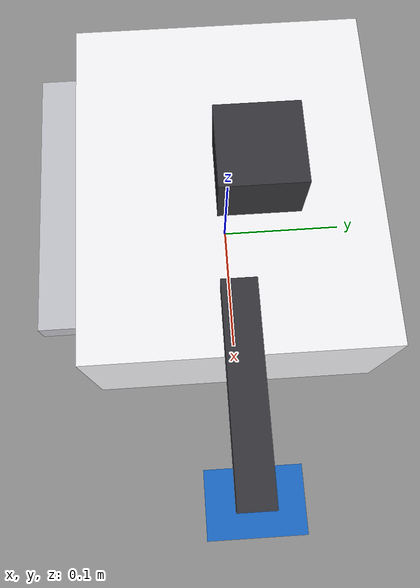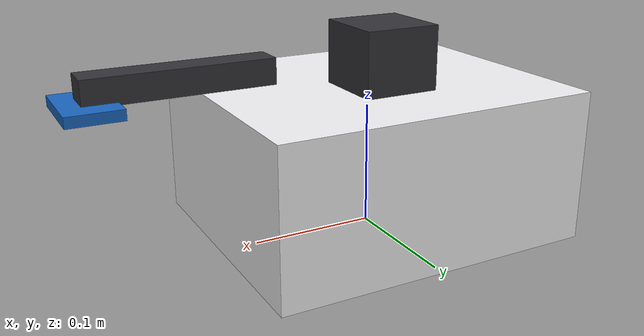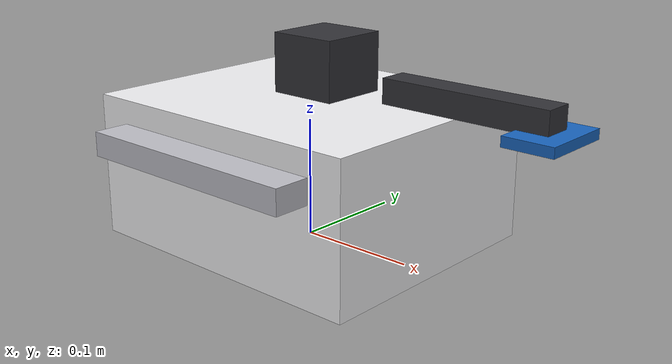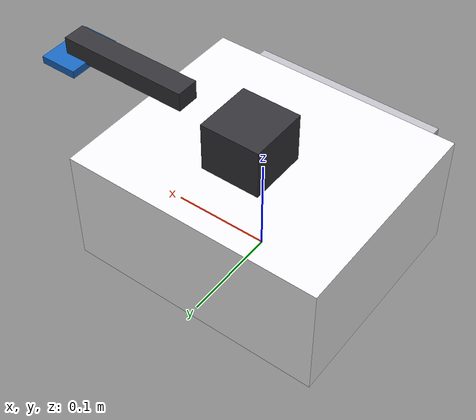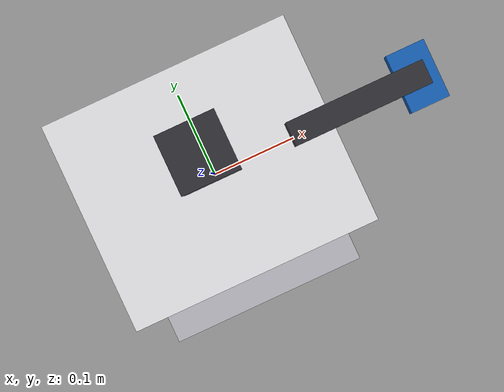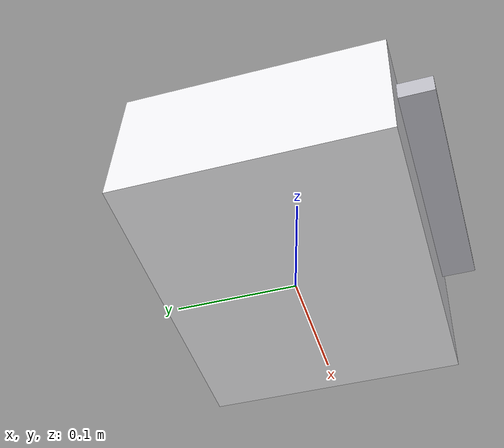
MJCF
<?xml version="1.0" encoding="utf-8"?>
<mujoco model="real_lab_aberdeen_university_celldiscoverer">
  <compiler angle="radian" autolimits="true"/>
  <default>
    <default class="body"><geom contype="1" conaffinity="1"/></default>
  </default>
  <worldbody>
    <body name="base">
      <geom type="box" size="0.13 0.11 0.06" pos="0 0 0.06" rgba="0.95 0.95 0.96 1" class="body"/>
      <geom type="box" size="0.03 0.03 0.03" pos="0.0 0.02 0.14" rgba="0.2 0.2 0.22 1" class="body"/>
      <geom type="box" size="0.1 0.02 0.01" pos="0 -0.12 0.09" rgba="0.75 0.75 0.78 0.9" class="body"/>
      <body name="pick_arm" pos="0.1 0.0 0.14">
        <joint name="pick_arm_joint" type="hinge" axis="0 0 1" range="-1.2 0" damping="0.6" frictionloss="0.25"/>
  <geom type="box" size="0.07 0.012 0.01" pos="0.055 0 0" rgba="0.2 0.2 0.22 1" class="body"/>
  <geom type="box" size="0.02 0.03 0.004" pos="0.12 0 -0.012" rgba="0.1 0.4 0.75 1" class="body"/>
      </body>
    </body>
  </worldbody>
</mujoco>
